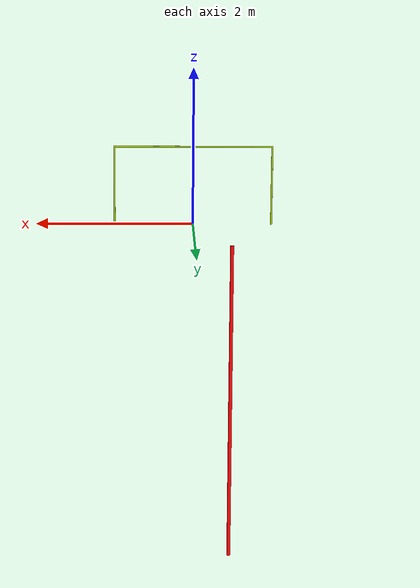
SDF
<?xml version="1.0"?>
<sdf version='1.9'>
  <model name='preq_task'>
        <static>true</static>

        <link name='preq_task'>
            <collision name='preq_task_collision'>
                <geometry>
                <mesh>
                    <uri>model://preq_task/preq_task_2.dae</uri>
                </mesh>

                </geometry>
            </collision>

            <visual name='preq_task_visual'>
                <geometry>
                <mesh>
                    <uri>model://preq_task/preq_task_2.dae</uri>
                </mesh>

                </geometry>
            </visual>

        </link>
  </model>
</sdf>
